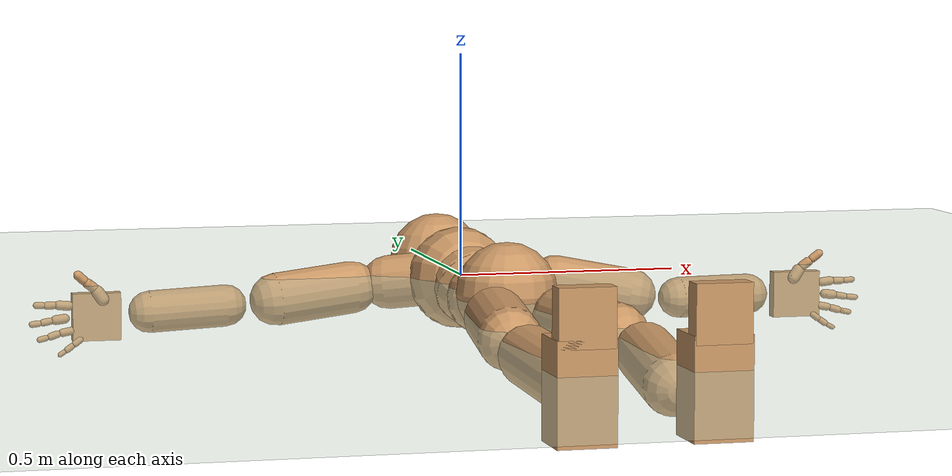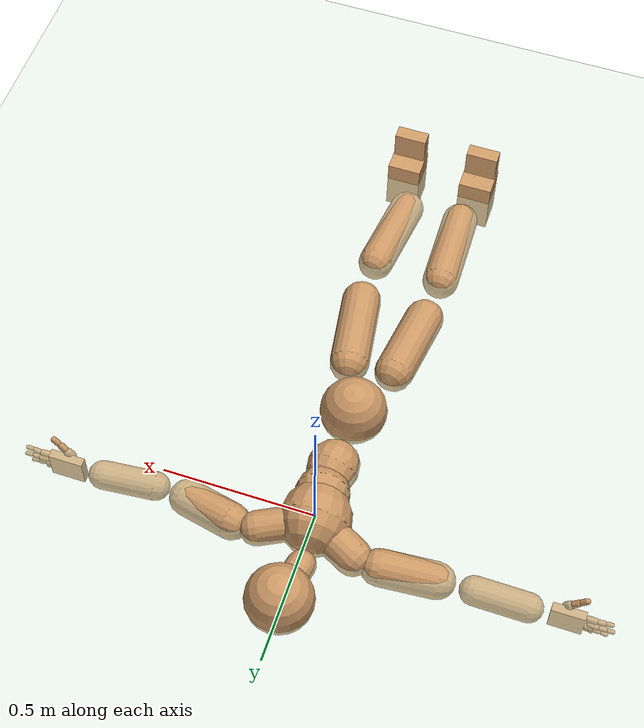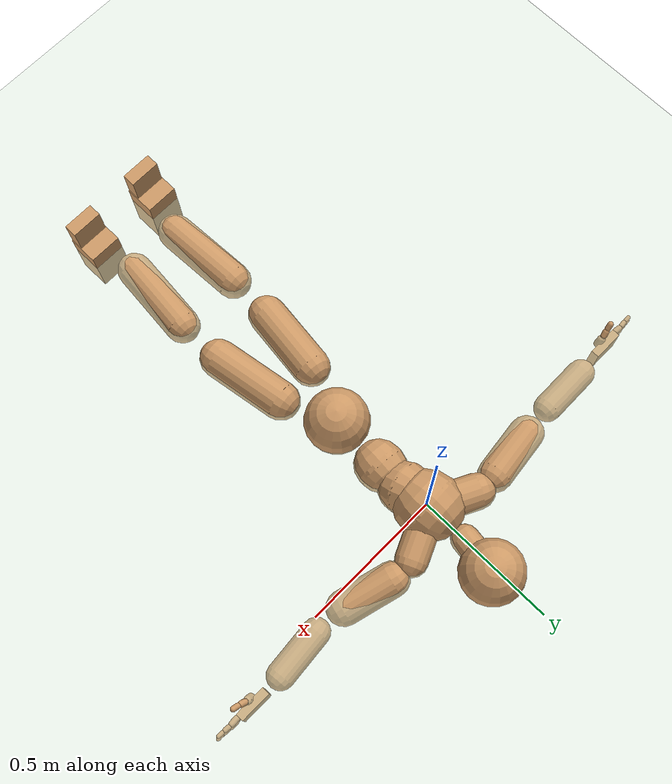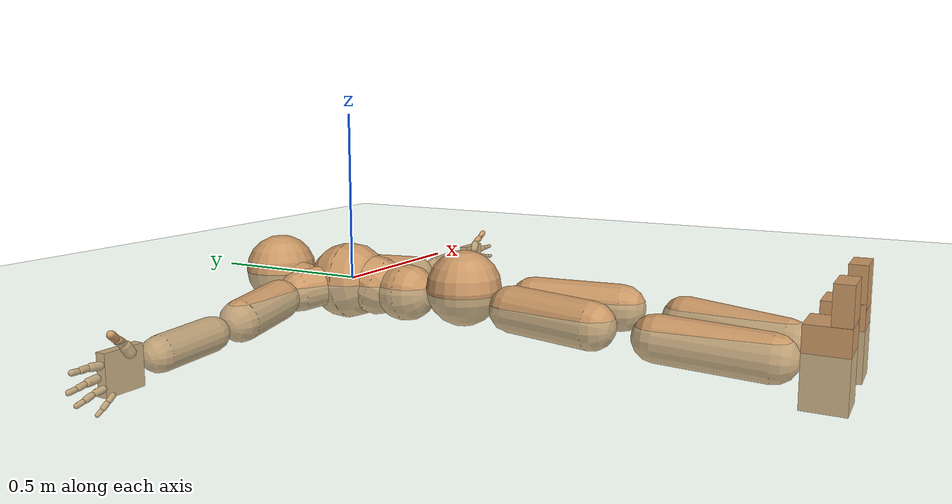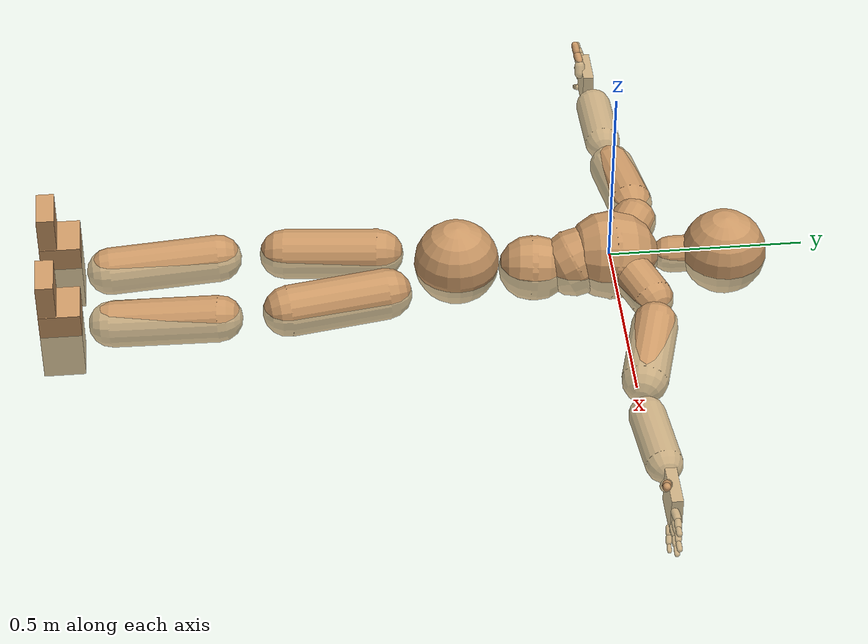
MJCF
<mujoco model="humanoid">
  <compiler coordinate="local"/>
  <default>
    <joint damping="0.0" armature="0.01" stiffness="0.0" limited="true"/>
    <geom conaffinity="1" condim="3" contype="7" margin="0.001" rgba="0.8 0.6 .4 1"/>
  </default>
  <asset>
    <texture type="skybox" builtin="gradient" rgb1=".4 .5 .6" rgb2="0 0 0" width="100" height="100"/>
    <texture builtin="flat" height="1278" mark="cross" markrgb="1 1 1" name="texgeom" random="0.01" rgb1="0.8 0.6 0.4" rgb2="0.8 0.6 0.4" type="cube" width="127"/>
    <texture builtin="checker" height="100" name="texplane" rgb1="0 0 0" rgb2="0.8 0.8 0.8" type="2d" width="100"/>
    <material name="MatPlane" reflectance="0.5" shininess="1" specular="1" texrepeat="60 60" texture="texplane"/>
    <material name="geom" texture="texgeom" texuniform="true"/>
  </asset>
  <worldbody>
    <light cutoff="100" diffuse="1 1 1" dir="-0 0 -1.3" directional="true" exponent="1" pos="0 0 1.3" specular=".1 .1 .1"/>
    <geom conaffinity="1" condim="3" name="floor" pos="0 0 0" rgba="0.8 0.9 0.8 1" size="100 100 .2" type="plane" material="MatPlane"/>
    <body name="Pelvis" pos="0.0029 -0.3959 0.0083">
      <freejoint name="Pelvis"/>
      <geom type="sphere" contype="1" conaffinity="1" density="4629.6296296296305" size="0.1095" pos="0.0000 0.0000 0.0000" name="Pelvis"/>
      <body name="L_Hip" pos="0.061 -0.1022 -0.0283">
        <joint name="L_Hip_x" type="hinge" pos="0 0 0" axis="1 0 0" user="250 2.5 1 500 10 2" armature="0.01" range="-90.0000 90.0000" damping="0" stiffness="0"/>
        <joint name="L_Hip_y" type="hinge" pos="0 0 0" axis="0 1 0" user="250 2.5 1 500 10 2" armature="0.01" range="-90.0000 90.0000" damping="0" stiffness="0"/>
        <joint name="L_Hip_z" type="hinge" pos="0 0 0" axis="0 0 1" user="250 2.5 1 500 10 2" armature="0.01" range="-90.0000 90.0000" damping="0" stiffness="0"/>
        <geom type="capsule" contype="1" conaffinity="1" density="2040.816327" fromto="0.0130 -0.0841 -0.0011 0.0519 -0.3363 -0.0045" size="0.0658" name="L_Hip"/>
        <body name="L_Knee" pos="0.0649 -0.4204 -0.0056">
          <joint name="L_Knee_x" type="hinge" pos="0 0 0" axis="1 0 0" user="250 2.5 1 500 10 2" armature="0.01" range="-180.0000 180.0000" damping="0" stiffness="0"/>
          <joint name="L_Knee_y" type="hinge" pos="0 0 0" axis="0 1 0" user="250 2.5 1 500 10 2" armature="0.01" range="-5.6250 5.6250" damping="0" stiffness="0"/>
          <joint name="L_Knee_z" type="hinge" pos="0 0 0" axis="0 0 1" user="250 2.5 1 500 10 2" armature="0.01" range="-5.6250 5.6250" damping="0" stiffness="0"/>
          <geom type="capsule" contype="1" conaffinity="1" density="1234.567901" fromto="-0.0096 -0.0908 -0.0072 -0.0382 -0.3632 -0.0290" size="0.0597" name="L_Knee"/>
          <body name="L_Ankle" pos="-0.0478 -0.4541 -0.0362">
            <joint name="L_Ankle_x" type="hinge" pos="0 0 0" axis="1 0 0" user="150 2.5 1 500 10 2" armature="0.01" range="-90.0000 90.0000" damping="0" stiffness="0"/>
            <joint name="L_Ankle_y" type="hinge" pos="0 0 0" axis="0 1 0" user="150 2.5 1 500 10 2" armature="0.01" range="-90.0000 90.0000" damping="0" stiffness="0"/>
            <joint name="L_Ankle_z" type="hinge" pos="0 0 0" axis="0 0 1" user="150 2.5 1 500 10 2" armature="0.01" range="-90.0000 90.0000" damping="0" stiffness="0"/>
            <geom type="box" density="462.006215" pos="0.0472 -0.0339 0.0262" size="0.0566 0.0524 0.0981" quat="1.0000 0.0000 0.0000 0.0000" name="L_Ankle"/>
            <body name="L_Toe" pos="0.0545 -0.067 0.1344">
              <joint name="L_Toe_x" type="hinge" pos="0 0 0" axis="1 0 0" user="150 1 1 500 1 1" armature="0.01" range="-90.0000 90.0000" damping="0" stiffness="0"/>
              <joint name="L_Toe_y" type="hinge" pos="0 0 0" axis="0 1 0" user="150 1 1 500 1 1" armature="0.01" range="-45.0000 45.0000" damping="0" stiffness="0"/>
              <joint name="L_Toe_z" type="hinge" pos="0 0 0" axis="0 0 1" user="150 1 1 500 1 1" armature="0.01" range="-45.0000 45.0000" damping="0" stiffness="0"/>
              <geom type="box" density="424.284098" pos="-0.0073 0.0034 0.0290" size="0.054 0.0228 0.056" quat="1.0000 0.0000 0.0000 0.0000" name="L_Toe"/>
            </body>
          </body>
        </body>
      </body>
      <body name="R_Hip" pos="-0.0661 -0.1157 -0.0212">
        <joint name="R_Hip_x" type="hinge" pos="0 0 0" axis="1 0 0" user="250 2.5 1 500 10 2" armature="0.01" range="-90.0000 90.0000" damping="0" stiffness="0"/>
        <joint name="R_Hip_y" type="hinge" pos="0 0 0" axis="0 1 0" user="250 2.5 1 500 10 2" armature="0.01" range="-90.0000 90.0000" damping="0" stiffness="0"/>
        <joint name="R_Hip_z" type="hinge" pos="0 0 0" axis="0 0 1" user="250 2.5 1 500 10 2" armature="0.01" range="-90.0000 90.0000" damping="0" stiffness="0"/>
        <geom type="capsule" contype="1" conaffinity="1" density="2040.816327" fromto="-0.0106 -0.0802 -0.0031 -0.0424 -0.3207 -0.0123" size="0.0651" name="R_Hip"/>
        <body name="R_Knee" pos="-0.0531 -0.4008 -0.0153">
          <joint name="R_Knee_x" type="hinge" pos="0 0 0" axis="1 0 0" user="250 2.5 1 500 10 2" armature="0.01" range="-180.0000 180.0000" damping="0" stiffness="0"/>
          <joint name="R_Knee_y" type="hinge" pos="0 0 0" axis="0 1 0" user="250 2.5 1 500 10 2" armature="0.01" range="-5.6250 5.6250" damping="0" stiffness="0"/>
          <joint name="R_Knee_z" type="hinge" pos="0 0 0" axis="0 0 1" user="250 2.5 1 500 10 2" armature="0.01" range="-5.6250 5.6250" damping="0" stiffness="0"/>
          <geom type="capsule" contype="1" conaffinity="1" density="1234.567901" fromto="0.0031 -0.0927 -0.0046 0.0125 -0.3707 -0.0184" size="0.0614" name="R_Knee"/>
          <body name="R_Ankle" pos="0.0157 -0.4633 -0.023">
            <joint name="R_Ankle_x" type="hinge" pos="0 0 0" axis="1 0 0" user="150 1 1 500 10 2" armature="0.01" range="-90.0000 90.0000" damping="0" stiffness="0"/>
            <joint name="R_Ankle_y" type="hinge" pos="0 0 0" axis="0 1 0" user="150 1 1 500 10 2" armature="0.01" range="-90.0000 90.0000" damping="0" stiffness="0"/>
            <joint name="R_Ankle_z" type="hinge" pos="0 0 0" axis="0 0 1" user="150 1 1 500 10 2" armature="0.01" range="-90.0000 90.0000" damping="0" stiffness="0"/>
            <geom type="box" density="461.990432" pos="-0.0277 -0.0308 0.0156" size="0.0566 0.0524 0.0981" quat="1.0000 0.0000 0.0000 0.0000" name="R_Ankle"/>
            <body name="R_Toe" pos="-0.0438 -0.0665 0.135">
              <joint name="R_Toe_x" type="hinge" pos="0 0 0" axis="1 0 0" user="150 1 1 500 1 1" armature="0.01" range="-90.0000 90.0000" damping="0" stiffness="0"/>
              <joint name="R_Toe_y" type="hinge" pos="0 0 0" axis="0 1 0" user="150 1 1 500 1 1" armature="0.01" range="-45.0000 45.0000" damping="0" stiffness="0"/>
              <joint name="R_Toe_z" type="hinge" pos="0 0 0" axis="0 0 1" user="150 1 1 500 1 1" armature="0.01" range="-45.0000 45.0000" damping="0" stiffness="0"/>
              <geom type="box" density="424.29831" pos="0.0161 0.0061 0.0178" size="0.054 0.0228 0.0559" quat="1.0000 0.0000 0.0000 0.0000" name="R_Toe"/>
            </body>
          </body>
        </body>
      </body>
      <body name="Torso" pos="-0.0033 0.1226 -0.031">
        <joint name="Torso_x" type="hinge" pos="0 0 0" axis="1 0 0" user="500 5 1 500 10 2" armature="0.01" range="-60.0000 60.0000" damping="0" stiffness="0"/>
        <joint name="Torso_y" type="hinge" pos="0 0 0" axis="0 1 0" user="500 5 1 500 10 2" armature="0.01" range="-60.0000 60.0000" damping="0" stiffness="0"/>
        <joint name="Torso_z" type="hinge" pos="0 0 0" axis="0 0 1" user="500 5 1 500 10 2" armature="0.01" range="-60.0000 60.0000" damping="0" stiffness="0"/>
        <geom type="capsule" contype="1" conaffinity="1" density="2040.816327" fromto="0.0055 0.0695 -0.0030 0.0067 0.0850 -0.0037" size="0.0837" name="Torso"/>
        <body name="Spine" pos="0.0121 0.1545 -0.0067">
          <joint name="Spine_x" type="hinge" pos="0 0 0" axis="1 0 0" user="500 5 1 500 10 2" armature="0.01" range="-60.0000 60.0000" damping="0" stiffness="0"/>
          <joint name="Spine_y" type="hinge" pos="0 0 0" axis="0 1 0" user="500 5 1 500 10 2" armature="0.01" range="-60.0000 60.0000" damping="0" stiffness="0"/>
          <joint name="Spine_z" type="hinge" pos="0 0 0" axis="0 0 1" user="500 5 1 500 10 2" armature="0.01" range="-60.0000 60.0000" damping="0" stiffness="0"/>
          <geom type="capsule" contype="1" conaffinity="1" density="2040.816327" fromto="-0.0057 0.0285 0.0133 -0.0069 0.0349 0.0162" size="0.088" name="Spine"/>
          <body name="Chest" pos="-0.0126 0.0634 0.0295">
            <joint name="Chest_x" type="hinge" pos="0 0 0" axis="1 0 0" user="500 5 1 500 10 2" armature="0.01" range="-60.0000 60.0000" damping="0" stiffness="0"/>
            <joint name="Chest_y" type="hinge" pos="0 0 0" axis="0 1 0" user="500 5 1 500 10 2" armature="0.01" range="-60.0000 60.0000" damping="0" stiffness="0"/>
            <joint name="Chest_z" type="hinge" pos="0 0 0" axis="0 0 1" user="500 5 1 500 10 2" armature="0.01" range="-60.0000 60.0000" damping="0" stiffness="0"/>
            <geom type="capsule" contype="1" conaffinity="1" density="2040.816327" fromto="-0.0026 0.0554 -0.0058 -0.0031 0.0677 -0.0071" size="0.1144" name="Chest"/>
            <body name="Neck" pos="-0.0142 0.182 -0.0259">
              <joint name="Neck_x" type="hinge" pos="0 0 0" axis="1 0 0" user="150 1 1 250 50 4" armature="0.01" range="-180.0000 180.0000" damping="0" stiffness="0"/>
              <joint name="Neck_y" type="hinge" pos="0 0 0" axis="0 1 0" user="150 1 1 250 50 4" armature="0.01" range="-180.0000 180.0000" damping="0" stiffness="0"/>
              <joint name="Neck_z" type="hinge" pos="0 0 0" axis="0 0 1" user="150 1 1 250 50 4" armature="0.01" range="-180.0000 180.0000" damping="0" stiffness="0"/>
              <geom type="capsule" contype="1" conaffinity="1" density="1000" fromto="0.0057 0.0338 0.0051 0.0228 0.1351 0.0203" size="0.0475" name="Neck"/>
              <body name="Head" pos="0.0286 0.1689 0.0254">
                <joint name="Head_x" type="hinge" pos="0 0 0" axis="1 0 0" user="150 1 1 250 50 4" armature="0.01" range="-90.0000 90.0000" damping="0" stiffness="0"/>
                <joint name="Head_y" type="hinge" pos="0 0 0" axis="0 1 0" user="150 1 1 250 50 4" armature="0.01" range="-90.0000 90.0000" damping="0" stiffness="0"/>
                <joint name="Head_z" type="hinge" pos="0 0 0" axis="0 0 1" user="150 1 1 250 50 4" armature="0.01" range="-90.0000 90.0000" damping="0" stiffness="0"/>
                <geom type="sphere" contype="1" conaffinity="1" density="1000" size="0.1096" pos="0.0000 0.0000 0.0000" name="Head"/>
              </body>
            </body>
            <body name="L_Thorax" pos="0.0505 0.094 -0.0029">
              <joint name="L_Thorax_x" type="hinge" pos="0 0 0" axis="1 0 0" user="200 2 1 500 50 4" armature="0.01" range="-180.0000 180.0000" damping="0" stiffness="0"/>
              <joint name="L_Thorax_y" type="hinge" pos="0 0 0" axis="0 1 0" user="200 2 1 500 50 4" armature="0.01" range="-180.0000 180.0000" damping="0" stiffness="0"/>
              <joint name="L_Thorax_z" type="hinge" pos="0 0 0" axis="0 0 1" user="200 2 1 500 50 4" armature="0.01" range="-180.0000 180.0000" damping="0" stiffness="0"/>
              <geom type="capsule" contype="1" conaffinity="1" density="1000" fromto="0.0277 0.0124 -0.0038 0.1107 0.0497 -0.0151" size="0.0556" name="L_Thorax"/>
              <body name="L_Shoulder" pos="0.1384 0.0621 -0.0189">
                <joint name="L_Shoulder_x" type="hinge" pos="0 0 0" axis="1 0 0" user="200 2 1 500 50 4" armature="0.01" range="-180.0000 180.0000" damping="0" stiffness="0"/>
                <joint name="L_Shoulder_y" type="hinge" pos="0 0 0" axis="0 1 0" user="200 2 1 500 50 4" armature="0.01" range="-180.0000 180.0000" damping="0" stiffness="0"/>
                <joint name="L_Shoulder_z" type="hinge" pos="0 0 0" axis="0 0 1" user="200 2 1 500 50 4" armature="0.01" range="-180.0000 180.0000" damping="0" stiffness="0"/>
                <geom type="capsule" contype="1" conaffinity="1" density="1000" fromto="0.0559 -0.0160 -0.0100 0.2235 -0.0638 -0.0400" size="0.0592" name="L_Shoulder"/>
                <body name="L_Elbow" pos="0.2794 -0.0798 -0.05">
                  <joint name="L_Elbow_x" type="hinge" pos="0 0 0" axis="1 0 0" user="150 1 1 150 10 2" armature="0.01" range="-720.0000 720.0000" damping="0" stiffness="0"/>
                  <joint name="L_Elbow_y" type="hinge" pos="0 0 0" axis="0 1 0" user="150 1 1 150 10 2" armature="0.01" range="-720.0000 720.0000" damping="0" stiffness="0"/>
                  <joint name="L_Elbow_z" type="hinge" pos="0 0 0" axis="0 0 1" user="150 1 1 150 10 2" armature="0.01" range="-720.0000 720.0000" damping="0" stiffness="0"/>
                  <geom type="capsule" contype="1" conaffinity="1" density="1000" fromto="0.0577 0.0055 0.0002 0.2308 0.0219 0.0009" size="0.0469" name="L_Elbow"/>
                  <body name="L_Wrist" pos="0.2885 0.0274 0.0011">
                    <joint name="L_Wrist_x" type="hinge" pos="0 0 0" axis="1 0 0" user="100 1 1 150 1 1" armature="0.01" range="-180.0000 180.0000" damping="0" stiffness="0"/>
                    <joint name="L_Wrist_y" type="hinge" pos="0 0 0" axis="0 1 0" user="100 1 1 150 1 1" armature="0.01" range="-180.0000 180.0000" damping="0" stiffness="0"/>
                    <joint name="L_Wrist_z" type="hinge" pos="0 0 0" axis="0 0 1" user="100 1 1 150 1 1" armature="0.01" range="-180.0000 180.0000" damping="0" stiffness="0"/>
                    <geom type="box" density="1215.808982" pos="0.0615 -0.0019 -0.0034" size="0.0566 0.0143 0.0529" quat="1.0000 0.0000 0.0000 0.0000" name="L_Wrist"/>
                    <body name="L_Index1" pos="0.1193 -0.0091 0.022">
                      <joint name="L_Index1_x" type="hinge" pos="0 0 0" axis="1 0 0" user="100 10 1 150" armature="0.01" range="-180.0000 180.0000" damping="0" stiffness="0"/>
                      <joint name="L_Index1_y" type="hinge" pos="0 0 0" axis="0 1 0" user="100 10 1 150" armature="0.01" range="-180.0000 180.0000" damping="0" stiffness="0"/>
                      <joint name="L_Index1_z" type="hinge" pos="0 0 0" axis="0 0 1" user="100 10 1 150" armature="0.01" range="-180.0000 180.0000" damping="0" stiffness="0"/>
                      <geom type="capsule" contype="1" conaffinity="1" density="1000" fromto="0.0071 0.0006 0.0006 0.0282 0.0023 0.0024" size="0.0104" name="L_Index1"/>
                      <body name="L_Index2" pos="0.0353 0.0029 0.003">
                        <joint name="L_Index2_x" type="hinge" pos="0 0 0" axis="1 0 0" user="100 10 1 150" armature="0.01" range="-180.0000 180.0000" damping="0" stiffness="0"/>
                        <joint name="L_Index2_y" type="hinge" pos="0 0 0" axis="0 1 0" user="100 10 1 150" armature="0.01" range="-180.0000 180.0000" damping="0" stiffness="0"/>
                        <joint name="L_Index2_z" type="hinge" pos="0 0 0" axis="0 0 1" user="100 10 1 150" armature="0.01" range="-180.0000 180.0000" damping="0" stiffness="0"/>
                        <geom type="capsule" contype="1" conaffinity="1" density="1000" fromto="0.0050 -0.0005 -0.0001 0.0198 -0.0021 -0.0003" size="0.0086" name="L_Index2"/>
                        <body name="L_Index3" pos="0.0248 -0.0026 -0.0003">
                          <joint name="L_Index3_x" type="hinge" pos="0 0 0" axis="1 0 0" user="100 10 1 150" armature="0.01" range="-180.0000 180.0000" damping="0" stiffness="0"/>
                          <joint name="L_Index3_y" type="hinge" pos="0 0 0" axis="0 1 0" user="100 10 1 150" armature="0.01" range="-180.0000 180.0000" damping="0" stiffness="0"/>
                          <joint name="L_Index3_z" type="hinge" pos="0 0 0" axis="0 0 1" user="100 10 1 150" armature="0.01" range="-180.0000 180.0000" damping="0" stiffness="0"/>
                          <geom type="capsule" contype="1" conaffinity="1" density="1000" fromto="0.0054 -0.0001 0.0003 0.0214 -0.0005 0.0013" size="0.0072" name="L_Index3"/>
                        </body>
                      </body>
                    </body>
                    <body name="L_Middle1" pos="0.1283 -0.0064 -0.005">
                      <joint name="L_Middle1_x" type="hinge" pos="0 0 0" axis="1 0 0" user="100 10 1 150" armature="0.01" range="-180.0000 180.0000" damping="0" stiffness="0"/>
                      <joint name="L_Middle1_y" type="hinge" pos="0 0 0" axis="0 1 0" user="100 10 1 150" armature="0.01" range="-180.0000 180.0000" damping="0" stiffness="0"/>
                      <joint name="L_Middle1_z" type="hinge" pos="0 0 0" axis="0 0 1" user="100 10 1 150" armature="0.01" range="-180.0000 180.0000" damping="0" stiffness="0"/>
                      <geom type="capsule" contype="1" conaffinity="1" density="1000" fromto="0.0068 0.0002 -0.0009 0.0271 0.0008 -0.0035" size="0.0107" name="L_Middle1"/>
                      <body name="L_Middle2" pos="0.0339 0.001 -0.0044">
                        <joint name="L_Middle2_x" type="hinge" pos="0 0 0" axis="1 0 0" user="100 10 1 150" armature="0.01" range="-180.0000 180.0000" damping="0" stiffness="0"/>
                        <joint name="L_Middle2_y" type="hinge" pos="0 0 0" axis="0 1 0" user="100 10 1 150" armature="0.01" range="-180.0000 180.0000" damping="0" stiffness="0"/>
                        <joint name="L_Middle2_z" type="hinge" pos="0 0 0" axis="0 0 1" user="100 10 1 150" armature="0.01" range="-180.0000 180.0000" damping="0" stiffness="0"/>
                        <geom type="capsule" contype="1" conaffinity="1" density="1000" fromto="0.0052 -0.0005 -0.0009 0.0207 -0.0019 -0.0037" size="0.008" name="L_Middle2"/>
                        <body name="L_Middle3" pos="0.0259 -0.0024 -0.0047">
                          <joint name="L_Middle3_x" type="hinge" pos="0 0 0" axis="1 0 0" user="100 10 1 150" armature="0.01" range="-180.0000 180.0000" damping="0" stiffness="0"/>
                          <joint name="L_Middle3_y" type="hinge" pos="0 0 0" axis="0 1 0" user="100 10 1 150" armature="0.01" range="-180.0000 180.0000" damping="0" stiffness="0"/>
                          <joint name="L_Middle3_z" type="hinge" pos="0 0 0" axis="0 0 1" user="100 10 1 150" armature="0.01" range="-180.0000 180.0000" damping="0" stiffness="0"/>
                          <geom type="capsule" contype="1" conaffinity="1" density="1000" fromto="0.0056 -0.0001 -0.0005 0.0223 -0.0003 -0.0021" size="0.0069" name="L_Middle3"/>
                        </body>
                      </body>
                    </body>
                    <body name="L_Pinky1" pos="0.0997 -0.016 -0.0506">
                      <joint name="L_Pinky1_x" type="hinge" pos="0 0 0" axis="1 0 0" user="100 10 1 150" armature="0.01" range="-180.0000 180.0000" damping="0" stiffness="0"/>
                      <joint name="L_Pinky1_y" type="hinge" pos="0 0 0" axis="0 1 0" user="100 10 1 150" armature="0.01" range="-180.0000 180.0000" damping="0" stiffness="0"/>
                      <joint name="L_Pinky1_z" type="hinge" pos="0 0 0" axis="0 0 1" user="100 10 1 150" armature="0.01" range="-180.0000 180.0000" damping="0" stiffness="0"/>
                      <geom type="capsule" contype="1" conaffinity="1" density="1000" fromto="0.0036 -0.0003 -0.0026 0.0144 -0.0012 -0.0106" size="0.0075" name="L_Pinky1"/>
                      <body name="L_Pinky2" pos="0.018 -0.0015 -0.0132">
                        <joint name="L_Pinky2_x" type="hinge" pos="0 0 0" axis="1 0 0" user="100 10 1 150" armature="0.01" range="-180.0000 180.0000" damping="0" stiffness="0"/>
                        <joint name="L_Pinky2_y" type="hinge" pos="0 0 0" axis="0 1 0" user="100 10 1 150" armature="0.01" range="-180.0000 180.0000" damping="0" stiffness="0"/>
                        <joint name="L_Pinky2_z" type="hinge" pos="0 0 0" axis="0 0 1" user="100 10 1 150" armature="0.01" range="-180.0000 180.0000" damping="0" stiffness="0"/>
                        <geom type="capsule" contype="1" conaffinity="1" density="1000" fromto="0.0035 -0.0004 -0.0024 0.0140 -0.0017 -0.0097" size="0.0072" name="L_Pinky2"/>
                        <body name="L_Pinky3" pos="0.0175 -0.0021 -0.0121">
                          <joint name="L_Pinky3_x" type="hinge" pos="0 0 0" axis="1 0 0" user="100 10 1 150" armature="0.01" range="-180.0000 180.0000" damping="0" stiffness="0"/>
                          <joint name="L_Pinky3_y" type="hinge" pos="0 0 0" axis="0 1 0" user="100 10 1 150" armature="0.01" range="-180.0000 180.0000" damping="0" stiffness="0"/>
                          <joint name="L_Pinky3_z" type="hinge" pos="0 0 0" axis="0 0 1" user="100 10 1 150" armature="0.01" range="-180.0000 180.0000" damping="0" stiffness="0"/>
                          <geom type="capsule" contype="1" conaffinity="1" density="1000" fromto="0.0039 -0.0000 -0.0020 0.0156 -0.0001 -0.0081" size="0.0055" name="L_Pinky3"/>
                        </body>
                      </body>
                    </body>
                    <body name="L_Ring1" pos="0.1151 -0.0099 -0.0319">
                      <joint name="L_Ring1_x" type="hinge" pos="0 0 0" axis="1 0 0" user="100 10 1 150" armature="0.01" range="-180.0000 180.0000" damping="0" stiffness="0"/>
                      <joint name="L_Ring1_y" type="hinge" pos="0 0 0" axis="0 1 0" user="100 10 1 150" armature="0.01" range="-180.0000 180.0000" damping="0" stiffness="0"/>
                      <joint name="L_Ring1_z" type="hinge" pos="0 0 0" axis="0 0 1" user="100 10 1 150" armature="0.01" range="-180.0000 180.0000" damping="0" stiffness="0"/>
                      <geom type="capsule" contype="1" conaffinity="1" density="1000" fromto="0.0063 0.0004 -0.0012 0.0254 0.0014 -0.0047" size="0.009" name="L_Ring1"/>
                      <body name="L_Ring2" pos="0.0317 0.0018 -0.0059">
                        <joint name="L_Ring2_x" type="hinge" pos="0 0 0" axis="1 0 0" user="100 10 1 150" armature="0.01" range="-180.0000 180.0000" damping="0" stiffness="0"/>
                        <joint name="L_Ring2_y" type="hinge" pos="0 0 0" axis="0 1 0" user="100 10 1 150" armature="0.01" range="-180.0000 180.0000" damping="0" stiffness="0"/>
                        <joint name="L_Ring2_z" type="hinge" pos="0 0 0" axis="0 0 1" user="100 10 1 150" armature="0.01" range="-180.0000 180.0000" damping="0" stiffness="0"/>
                        <geom type="capsule" contype="1" conaffinity="1" density="1000" fromto="0.0051 -0.0004 -0.0016 0.0203 -0.0014 -0.0063" size="0.0083" name="L_Ring2"/>
                        <body name="L_Ring3" pos="0.0254 -0.0018 -0.0079">
                          <joint name="L_Ring3_x" type="hinge" pos="0 0 0" axis="1 0 0" user="100 10 1 150" armature="0.01" range="-180.0000 180.0000" damping="0" stiffness="0"/>
                          <joint name="L_Ring3_y" type="hinge" pos="0 0 0" axis="0 1 0" user="100 10 1 150" armature="0.01" range="-180.0000 180.0000" damping="0" stiffness="0"/>
                          <joint name="L_Ring3_z" type="hinge" pos="0 0 0" axis="0 0 1" user="100 10 1 150" armature="0.01" range="-180.0000 180.0000" damping="0" stiffness="0"/>
                          <geom type="capsule" contype="1" conaffinity="1" density="1000" fromto="0.0055 0.0000 -0.0012 0.0219 0.0002 -0.0047" size="0.0065" name="L_Ring3"/>
                        </body>
                      </body>
                    </body>
                    <body name="L_Thumb1" pos="0.0484 -0.0213 0.0305">
                      <joint name="L_Thumb1_x" type="hinge" pos="0 0 0" axis="1 0 0" user="100 10 1 150" armature="0.01" range="-180.0000 180.0000" damping="0" stiffness="0"/>
                      <joint name="L_Thumb1_y" type="hinge" pos="0 0 0" axis="0 1 0" user="100 10 1 150" armature="0.01" range="-180.0000 180.0000" damping="0" stiffness="0"/>
                      <joint name="L_Thumb1_z" type="hinge" pos="0 0 0" axis="0 0 1" user="100 10 1 150" armature="0.01" range="-180.0000 180.0000" damping="0" stiffness="0"/>
                      <geom type="capsule" contype="1" conaffinity="1" density="1000" fromto="0.0038 0.0003 0.0058 0.0154 0.0011 0.0230" size="0.0141" name="L_Thumb1"/>
                      <body name="L_Thumb2" pos="0.0192 0.0013 0.0288">
                        <joint name="L_Thumb2_x" type="hinge" pos="0 0 0" axis="1 0 0" user="100 10 1 150" armature="0.01" range="-180.0000 180.0000" damping="0" stiffness="0"/>
                        <joint name="L_Thumb2_y" type="hinge" pos="0 0 0" axis="0 1 0" user="100 10 1 150" armature="0.01" range="-180.0000 180.0000" damping="0" stiffness="0"/>
                        <joint name="L_Thumb2_z" type="hinge" pos="0 0 0" axis="0 0 1" user="100 10 1 150" armature="0.01" range="-180.0000 180.0000" damping="0" stiffness="0"/>
                        <geom type="capsule" contype="1" conaffinity="1" density="1000" fromto="0.0046 -0.0012 0.0035 0.0184 -0.0047 0.0140" size="0.0111" name="L_Thumb2"/>
                        <body name="L_Thumb3" pos="0.023 -0.0059 0.0175">
                          <joint name="L_Thumb3_x" type="hinge" pos="0 0 0" axis="1 0 0" user="100 10 1 150" armature="0.01" range="-180.0000 180.0000" damping="0" stiffness="0"/>
                          <joint name="L_Thumb3_y" type="hinge" pos="0 0 0" axis="0 1 0" user="100 10 1 150" armature="0.01" range="-180.0000 180.0000" damping="0" stiffness="0"/>
                          <joint name="L_Thumb3_z" type="hinge" pos="0 0 0" axis="0 0 1" user="100 10 1 150" armature="0.01" range="-180.0000 180.0000" damping="0" stiffness="0"/>
                          <geom type="capsule" contype="1" conaffinity="1" density="1000" fromto="0.0050 -0.0008 0.0039 0.0200 -0.0031 0.0156" size="0.0099" name="L_Thumb3"/>
                        </body>
                      </body>
                    </body>
                  </body>
                </body>
              </body>
            </body>
            <body name="R_Thorax" pos="-0.0533 0.093 -0.0099">
              <joint name="R_Thorax_x" type="hinge" pos="0 0 0" axis="1 0 0" user="200 2 1 150 10 2" armature="0.01" range="-180.0000 180.0000" damping="0" stiffness="0"/>
              <joint name="R_Thorax_y" type="hinge" pos="0 0 0" axis="0 1 0" user="200 2 1 150 10 2" armature="0.01" range="-180.0000 180.0000" damping="0" stiffness="0"/>
              <joint name="R_Thorax_z" type="hinge" pos="0 0 0" axis="0 0 1" user="200 2 1 150 10 2" armature="0.01" range="-180.0000 180.0000" damping="0" stiffness="0"/>
              <geom type="capsule" contype="1" conaffinity="1" density="1000" fromto="-0.0240 0.0115 -0.0032 -0.0961 0.0461 -0.0127" size="0.0609" name="R_Thorax"/>
              <body name="R_Shoulder" pos="-0.1201 0.0577 -0.0158">
                <joint name="R_Shoulder_x" type="hinge" pos="0 0 0" axis="1 0 0" user="200 2 1 250 10 2" armature="0.01" range="-180.0000 180.0000" damping="0" stiffness="0"/>
                <joint name="R_Shoulder_y" type="hinge" pos="0 0 0" axis="0 1 0" user="200 2 1 250 10 2" armature="0.01" range="-180.0000 180.0000" damping="0" stiffness="0"/>
                <joint name="R_Shoulder_z" type="hinge" pos="0 0 0" axis="0 0 1" user="200 2 1 250 10 2" armature="0.01" range="-180.0000 180.0000" damping="0" stiffness="0"/>
                <geom type="capsule" contype="1" conaffinity="1" density="1000" fromto="-0.0599 -0.0077 -0.0064 -0.2395 -0.0309 -0.0256" size="0.0591" name="R_Shoulder"/>
                <body name="R_Elbow" pos="-0.2993 -0.0387 -0.032">
                  <joint name="R_Elbow_x" type="hinge" pos="0 0 0" axis="1 0 0" user="150 1 1 150 10 2" armature="0.01" range="-720.0000 720.0000" damping="0" stiffness="0"/>
                  <joint name="R_Elbow_y" type="hinge" pos="0 0 0" axis="0 1 0" user="150 1 1 150 10 2" armature="0.01" range="-720.0000 720.0000" damping="0" stiffness="0"/>
                  <joint name="R_Elbow_z" type="hinge" pos="0 0 0" axis="0 0 1" user="150 1 1 150 10 2" armature="0.01" range="-720.0000 720.0000" damping="0" stiffness="0"/>
                  <geom type="capsule" contype="1" conaffinity="1" density="1000" fromto="-0.0569 -0.0010 -0.0027 -0.2275 -0.0038 -0.0107" size="0.0473" name="R_Elbow"/>
                  <body name="R_Wrist" pos="-0.2844 -0.0048 -0.0133">
                    <joint name="R_Wrist_x" type="hinge" pos="0 0 0" axis="1 0 0" user="100 1 1 150 1 1" armature="0.01" range="-180.0000 180.0000" damping="0" stiffness="0"/>
                    <joint name="R_Wrist_y" type="hinge" pos="0 0 0" axis="0 1 0" user="100 1 1 150 1 1" armature="0.01" range="-180.0000 180.0000" damping="0" stiffness="0"/>
                    <joint name="R_Wrist_z" type="hinge" pos="0 0 0" axis="0 0 1" user="100 1 1 150 1 1" armature="0.01" range="-180.0000 180.0000" damping="0" stiffness="0"/>
                    <geom type="box" density="1238.293613" pos="-0.0629 -0.0053 -0.0031" size="0.0536 0.0143 0.0529" quat="1.0000 0.0000 0.0000 0.0000" name="R_Wrist"/>
                    <body name="R_Index1" pos="-0.1172 -0.0125 0.0223">
                      <joint name="R_Index1_x" type="hinge" pos="0 0 0" axis="1 0 0" user="100 10 1 150" armature="0.01" range="-180.0000 180.0000" damping="0" stiffness="0"/>
                      <joint name="R_Index1_y" type="hinge" pos="0 0 0" axis="0 1 0" user="100 10 1 150" armature="0.01" range="-180.0000 180.0000" damping="0" stiffness="0"/>
                      <joint name="R_Index1_z" type="hinge" pos="0 0 0" axis="0 0 1" user="100 10 1 150" armature="0.01" range="-180.0000 180.0000" damping="0" stiffness="0"/>
                      <geom type="capsule" contype="1" conaffinity="1" density="1000" fromto="-0.0071 0.0006 0.0006 -0.0282 0.0023 0.0024" size="0.0104" name="R_Index1"/>
                      <body name="R_Index2" pos="-0.0353 0.0029 0.003">
                        <joint name="R_Index2_x" type="hinge" pos="0 0 0" axis="1 0 0" user="100 10 1 150" armature="0.01" range="-180.0000 180.0000" damping="0" stiffness="0"/>
                        <joint name="R_Index2_y" type="hinge" pos="0 0 0" axis="0 1 0" user="100 10 1 150" armature="0.01" range="-180.0000 180.0000" damping="0" stiffness="0"/>
                        <joint name="R_Index2_z" type="hinge" pos="0 0 0" axis="0 0 1" user="100 10 1 150" armature="0.01" range="-180.0000 180.0000" damping="0" stiffness="0"/>
                        <geom type="capsule" contype="1" conaffinity="1" density="1000" fromto="-0.0050 -0.0005 -0.0001 -0.0198 -0.0021 -0.0003" size="0.0086" name="R_Index2"/>
                        <body name="R_Index3" pos="-0.0248 -0.0026 -0.0003">
                          <joint name="R_Index3_x" type="hinge" pos="0 0 0" axis="1 0 0" user="100 10 1 150" armature="0.01" range="-180.0000 180.0000" damping="0" stiffness="0"/>
                          <joint name="R_Index3_y" type="hinge" pos="0 0 0" axis="0 1 0" user="100 10 1 150" armature="0.01" range="-180.0000 180.0000" damping="0" stiffness="0"/>
                          <joint name="R_Index3_z" type="hinge" pos="0 0 0" axis="0 0 1" user="100 10 1 150" armature="0.01" range="-180.0000 180.0000" damping="0" stiffness="0"/>
                          <geom type="capsule" contype="1" conaffinity="1" density="1000" fromto="-0.0046 -0.0001 0.0003 -0.0182 -0.0005 0.0013" size="0.0075" name="R_Index3"/>
                        </body>
                      </body>
                    </body>
                    <body name="R_Middle1" pos="-0.1261 -0.0098 -0.0047">
                      <joint name="R_Middle1_x" type="hinge" pos="0 0 0" axis="1 0 0" user="100 10 1 150" armature="0.01" range="-180.0000 180.0000" damping="0" stiffness="0"/>
                      <joint name="R_Middle1_y" type="hinge" pos="0 0 0" axis="0 1 0" user="100 10 1 150" armature="0.01" range="-180.0000 180.0000" damping="0" stiffness="0"/>
                      <joint name="R_Middle1_z" type="hinge" pos="0 0 0" axis="0 0 1" user="100 10 1 150" armature="0.01" range="-180.0000 180.0000" damping="0" stiffness="0"/>
                      <geom type="capsule" contype="1" conaffinity="1" density="1000" fromto="-0.0068 0.0002 -0.0009 -0.0271 0.0008 -0.0035" size="0.0107" name="R_Middle1"/>
                      <body name="R_Middle2" pos="-0.0339 0.001 -0.0044">
                        <joint name="R_Middle2_x" type="hinge" pos="0 0 0" axis="1 0 0" user="100 10 1 150" armature="0.01" range="-180.0000 180.0000" damping="0" stiffness="0"/>
                        <joint name="R_Middle2_y" type="hinge" pos="0 0 0" axis="0 1 0" user="100 10 1 150" armature="0.01" range="-180.0000 180.0000" damping="0" stiffness="0"/>
                        <joint name="R_Middle2_z" type="hinge" pos="0 0 0" axis="0 0 1" user="100 10 1 150" armature="0.01" range="-180.0000 180.0000" damping="0" stiffness="0"/>
                        <geom type="capsule" contype="1" conaffinity="1" density="1000" fromto="-0.0052 -0.0005 -0.0009 -0.0207 -0.0019 -0.0037" size="0.008" name="R_Middle2"/>
                        <body name="R_Middle3" pos="-0.0259 -0.0024 -0.0047">
                          <joint name="R_Middle3_x" type="hinge" pos="0 0 0" axis="1 0 0" user="100 10 1 150" armature="0.01" range="-180.0000 180.0000" damping="0" stiffness="0"/>
                          <joint name="R_Middle3_y" type="hinge" pos="0 0 0" axis="0 1 0" user="100 10 1 150" armature="0.01" range="-180.0000 180.0000" damping="0" stiffness="0"/>
                          <joint name="R_Middle3_z" type="hinge" pos="0 0 0" axis="0 0 1" user="100 10 1 150" armature="0.01" range="-180.0000 180.0000" damping="0" stiffness="0"/>
                          <geom type="capsule" contype="1" conaffinity="1" density="1000" fromto="-0.0048 -0.0001 -0.0005 -0.0191 -0.0003 -0.0021" size="0.0072" name="R_Middle3"/>
                        </body>
                      </body>
                    </body>
                    <body name="R_Pinky1" pos="-0.0976 -0.0194 -0.0503">
                      <joint name="R_Pinky1_x" type="hinge" pos="0 0 0" axis="1 0 0" user="100 10 1 150" armature="0.01" range="-180.0000 180.0000" damping="0" stiffness="0"/>
                      <joint name="R_Pinky1_y" type="hinge" pos="0 0 0" axis="0 1 0" user="100 10 1 150" armature="0.01" range="-180.0000 180.0000" damping="0" stiffness="0"/>
                      <joint name="R_Pinky1_z" type="hinge" pos="0 0 0" axis="0 0 1" user="100 10 1 150" armature="0.01" range="-180.0000 180.0000" damping="0" stiffness="0"/>
                      <geom type="capsule" contype="1" conaffinity="1" density="1000" fromto="-0.0036 -0.0003 -0.0026 -0.0144 -0.0012 -0.0106" size="0.0075" name="R_Pinky1"/>
                      <body name="R_Pinky2" pos="-0.018 -0.0015 -0.0132">
                        <joint name="R_Pinky2_x" type="hinge" pos="0 0 0" axis="1 0 0" user="100 10 1 150" armature="0.01" range="-180.0000 180.0000" damping="0" stiffness="0"/>
                        <joint name="R_Pinky2_y" type="hinge" pos="0 0 0" axis="0 1 0" user="100 10 1 150" armature="0.01" range="-180.0000 180.0000" damping="0" stiffness="0"/>
                        <joint name="R_Pinky2_z" type="hinge" pos="0 0 0" axis="0 0 1" user="100 10 1 150" armature="0.01" range="-180.0000 180.0000" damping="0" stiffness="0"/>
                        <geom type="capsule" contype="1" conaffinity="1" density="1000" fromto="-0.0035 -0.0004 -0.0024 -0.0140 -0.0017 -0.0097" size="0.0072" name="R_Pinky2"/>
                        <body name="R_Pinky3" pos="-0.0175 -0.0021 -0.0121">
                          <joint name="R_Pinky3_x" type="hinge" pos="0 0 0" axis="1 0 0" user="100 10 1 150" armature="0.01" range="-180.0000 180.0000" damping="0" stiffness="0"/>
                          <joint name="R_Pinky3_y" type="hinge" pos="0 0 0" axis="0 1 0" user="100 10 1 150" armature="0.01" range="-180.0000 180.0000" damping="0" stiffness="0"/>
                          <joint name="R_Pinky3_z" type="hinge" pos="0 0 0" axis="0 0 1" user="100 10 1 150" armature="0.01" range="-180.0000 180.0000" damping="0" stiffness="0"/>
                          <geom type="capsule" contype="1" conaffinity="1" density="1000" fromto="-0.0031 -0.0000 -0.0020 -0.0124 -0.0001 -0.0081" size="0.0057" name="R_Pinky3"/>
                        </body>
                      </body>
                    </body>
                    <body name="R_Ring1" pos="-0.1129 -0.0133 -0.0317">
                      <joint name="R_Ring1_x" type="hinge" pos="0 0 0" axis="1 0 0" user="100 10 1 150" armature="0.01" range="-180.0000 180.0000" damping="0" stiffness="0"/>
                      <joint name="R_Ring1_y" type="hinge" pos="0 0 0" axis="0 1 0" user="100 10 1 150" armature="0.01" range="-180.0000 180.0000" damping="0" stiffness="0"/>
                      <joint name="R_Ring1_z" type="hinge" pos="0 0 0" axis="0 0 1" user="100 10 1 150" armature="0.01" range="-180.0000 180.0000" damping="0" stiffness="0"/>
                      <geom type="capsule" contype="1" conaffinity="1" density="1000" fromto="-0.0063 0.0004 -0.0012 -0.0254 0.0014 -0.0047" size="0.009" name="R_Ring1"/>
                      <body name="R_Ring2" pos="-0.0317 0.0018 -0.0059">
                        <joint name="R_Ring2_x" type="hinge" pos="0 0 0" axis="1 0 0" user="100 10 1 150" armature="0.01" range="-180.0000 180.0000" damping="0" stiffness="0"/>
                        <joint name="R_Ring2_y" type="hinge" pos="0 0 0" axis="0 1 0" user="100 10 1 150" armature="0.01" range="-180.0000 180.0000" damping="0" stiffness="0"/>
                        <joint name="R_Ring2_z" type="hinge" pos="0 0 0" axis="0 0 1" user="100 10 1 150" armature="0.01" range="-180.0000 180.0000" damping="0" stiffness="0"/>
                        <geom type="capsule" contype="1" conaffinity="1" density="1000" fromto="-0.0051 -0.0004 -0.0016 -0.0203 -0.0014 -0.0063" size="0.0083" name="R_Ring2"/>
                        <body name="R_Ring3" pos="-0.0254 -0.0018 -0.0079">
                          <joint name="R_Ring3_x" type="hinge" pos="0 0 0" axis="1 0 0" user="100 10 1 150" armature="0.01" range="-180.0000 180.0000" damping="0" stiffness="0"/>
                          <joint name="R_Ring3_y" type="hinge" pos="0 0 0" axis="0 1 0" user="100 10 1 150" armature="0.01" range="-180.0000 180.0000" damping="0" stiffness="0"/>
                          <joint name="R_Ring3_z" type="hinge" pos="0 0 0" axis="0 0 1" user="100 10 1 150" armature="0.01" range="-180.0000 180.0000" damping="0" stiffness="0"/>
                          <geom type="capsule" contype="1" conaffinity="1" density="1000" fromto="-0.0047 0.0000 -0.0012 -0.0187 0.0002 -0.0047" size="0.0068" name="R_Ring3"/>
                        </body>
                      </body>
                    </body>
                    <body name="R_Thumb1" pos="-0.0463 -0.0248 0.0308">
                      <joint name="R_Thumb1_x" type="hinge" pos="0 0 0" axis="1 0 0" user="100 10 1 150" armature="0.01" range="-180.0000 180.0000" damping="0" stiffness="0"/>
                      <joint name="R_Thumb1_y" type="hinge" pos="0 0 0" axis="0 1 0" user="100 10 1 150" armature="0.01" range="-180.0000 180.0000" damping="0" stiffness="0"/>
                      <joint name="R_Thumb1_z" type="hinge" pos="0 0 0" axis="0 0 1" user="100 10 1 150" armature="0.01" range="-180.0000 180.0000" damping="0" stiffness="0"/>
                      <geom type="capsule" contype="1" conaffinity="1" density="1000" fromto="-0.0038 0.0003 0.0058 -0.0154 0.0011 0.0230" size="0.0141" name="R_Thumb1"/>
                      <body name="R_Thumb2" pos="-0.0192 0.0013 0.0288">
                        <joint name="R_Thumb2_x" type="hinge" pos="0 0 0" axis="1 0 0" user="100 10 1 150" armature="0.01" range="-180.0000 180.0000" damping="0" stiffness="0"/>
                        <joint name="R_Thumb2_y" type="hinge" pos="0 0 0" axis="0 1 0" user="100 10 1 150" armature="0.01" range="-180.0000 180.0000" damping="0" stiffness="0"/>
                        <joint name="R_Thumb2_z" type="hinge" pos="0 0 0" axis="0 0 1" user="100 10 1 150" armature="0.01" range="-180.0000 180.0000" damping="0" stiffness="0"/>
                        <geom type="capsule" contype="1" conaffinity="1" density="1000" fromto="-0.0046 -0.0012 0.0035 -0.0184 -0.0047 0.0140" size="0.0111" name="R_Thumb2"/>
                        <body name="R_Thumb3" pos="-0.023 -0.0059 0.0175">
                          <joint name="R_Thumb3_x" type="hinge" pos="0 0 0" axis="1 0 0" user="100 10 1 150" armature="0.01" range="-180.0000 180.0000" damping="0" stiffness="0"/>
                          <joint name="R_Thumb3_y" type="hinge" pos="0 0 0" axis="0 1 0" user="100 10 1 150" armature="0.01" range="-180.0000 180.0000" damping="0" stiffness="0"/>
                          <joint name="R_Thumb3_z" type="hinge" pos="0 0 0" axis="0 0 1" user="100 10 1 150" armature="0.01" range="-180.0000 180.0000" damping="0" stiffness="0"/>
                          <geom type="capsule" contype="1" conaffinity="1" density="1000" fromto="-0.0042 -0.0008 0.0039 -0.0168 -0.0031 0.0156" size="0.0102" name="R_Thumb3"/>
                        </body>
                      </body>
                    </body>
                  </body>
                </body>
              </body>
            </body>
          </body>
        </body>
      </body>
    </body>
  </worldbody>
  <actuator>
    <motor name="L_Hip_x" joint="L_Hip_x" gear="1"/>
    <motor name="L_Hip_y" joint="L_Hip_y" gear="1"/>
    <motor name="L_Hip_z" joint="L_Hip_z" gear="1"/>
    <motor name="L_Knee_x" joint="L_Knee_x" gear="1"/>
    <motor name="L_Knee_y" joint="L_Knee_y" gear="1"/>
    <motor name="L_Knee_z" joint="L_Knee_z" gear="1"/>
    <motor name="L_Ankle_x" joint="L_Ankle_x" gear="1"/>
    <motor name="L_Ankle_y" joint="L_Ankle_y" gear="1"/>
    <motor name="L_Ankle_z" joint="L_Ankle_z" gear="1"/>
    <motor name="L_Toe_x" joint="L_Toe_x" gear="1"/>
    <motor name="L_Toe_y" joint="L_Toe_y" gear="1"/>
    <motor name="L_Toe_z" joint="L_Toe_z" gear="1"/>
    <motor name="R_Hip_x" joint="R_Hip_x" gear="1"/>
    <motor name="R_Hip_y" joint="R_Hip_y" gear="1"/>
    <motor name="R_Hip_z" joint="R_Hip_z" gear="1"/>
    <motor name="R_Knee_x" joint="R_Knee_x" gear="1"/>
    <motor name="R_Knee_y" joint="R_Knee_y" gear="1"/>
    <motor name="R_Knee_z" joint="R_Knee_z" gear="1"/>
    <motor name="R_Ankle_x" joint="R_Ankle_x" gear="1"/>
    <motor name="R_Ankle_y" joint="R_Ankle_y" gear="1"/>
    <motor name="R_Ankle_z" joint="R_Ankle_z" gear="1"/>
    <motor name="R_Toe_x" joint="R_Toe_x" gear="1"/>
    <motor name="R_Toe_y" joint="R_Toe_y" gear="1"/>
    <motor name="R_Toe_z" joint="R_Toe_z" gear="1"/>
    <motor name="Torso_x" joint="Torso_x" gear="1"/>
    <motor name="Torso_y" joint="Torso_y" gear="1"/>
    <motor name="Torso_z" joint="Torso_z" gear="1"/>
    <motor name="Spine_x" joint="Spine_x" gear="1"/>
    <motor name="Spine_y" joint="Spine_y" gear="1"/>
    <motor name="Spine_z" joint="Spine_z" gear="1"/>
    <motor name="Chest_x" joint="Chest_x" gear="1"/>
    <motor name="Chest_y" joint="Chest_y" gear="1"/>
    <motor name="Chest_z" joint="Chest_z" gear="1"/>
    <motor name="Neck_x" joint="Neck_x" gear="1"/>
    <motor name="Neck_y" joint="Neck_y" gear="1"/>
    <motor name="Neck_z" joint="Neck_z" gear="1"/>
    <motor name="Head_x" joint="Head_x" gear="1"/>
    <motor name="Head_y" joint="Head_y" gear="1"/>
    <motor name="Head_z" joint="Head_z" gear="1"/>
    <motor name="L_Thorax_x" joint="L_Thorax_x" gear="1"/>
    <motor name="L_Thorax_y" joint="L_Thorax_y" gear="1"/>
    <motor name="L_Thorax_z" joint="L_Thorax_z" gear="1"/>
    <motor name="L_Shoulder_x" joint="L_Shoulder_x" gear="1"/>
    <motor name="L_Shoulder_y" joint="L_Shoulder_y" gear="1"/>
    <motor name="L_Shoulder_z" joint="L_Shoulder_z" gear="1"/>
    <motor name="L_Elbow_x" joint="L_Elbow_x" gear="1"/>
    <motor name="L_Elbow_y" joint="L_Elbow_y" gear="1"/>
    <motor name="L_Elbow_z" joint="L_Elbow_z" gear="1"/>
    <motor name="L_Wrist_x" joint="L_Wrist_x" gear="1"/>
    <motor name="L_Wrist_y" joint="L_Wrist_y" gear="1"/>
    <motor name="L_Wrist_z" joint="L_Wrist_z" gear="1"/>
    <motor name="L_Index1_x" joint="L_Index1_x" gear="1"/>
    <motor name="L_Index1_y" joint="L_Index1_y" gear="1"/>
    <motor name="L_Index1_z" joint="L_Index1_z" gear="1"/>
    <motor name="L_Index2_x" joint="L_Index2_x" gear="1"/>
    <motor name="L_Index2_y" joint="L_Index2_y" gear="1"/>
    <motor name="L_Index2_z" joint="L_Index2_z" gear="1"/>
    <motor name="L_Index3_x" joint="L_Index3_x" gear="1"/>
    <motor name="L_Index3_y" joint="L_Index3_y" gear="1"/>
    <motor name="L_Index3_z" joint="L_Index3_z" gear="1"/>
    <motor name="L_Middle1_x" joint="L_Middle1_x" gear="1"/>
    <motor name="L_Middle1_y" joint="L_Middle1_y" gear="1"/>
    <motor name="L_Middle1_z" joint="L_Middle1_z" gear="1"/>
    <motor name="L_Middle2_x" joint="L_Middle2_x" gear="1"/>
    <motor name="L_Middle2_y" joint="L_Middle2_y" gear="1"/>
    <motor name="L_Middle2_z" joint="L_Middle2_z" gear="1"/>
    <motor name="L_Middle3_x" joint="L_Middle3_x" gear="1"/>
    <motor name="L_Middle3_y" joint="L_Middle3_y" gear="1"/>
    <motor name="L_Middle3_z" joint="L_Middle3_z" gear="1"/>
    <motor name="L_Pinky1_x" joint="L_Pinky1_x" gear="1"/>
    <motor name="L_Pinky1_y" joint="L_Pinky1_y" gear="1"/>
    <motor name="L_Pinky1_z" joint="L_Pinky1_z" gear="1"/>
    <motor name="L_Pinky2_x" joint="L_Pinky2_x" gear="1"/>
    <motor name="L_Pinky2_y" joint="L_Pinky2_y" gear="1"/>
    <motor name="L_Pinky2_z" joint="L_Pinky2_z" gear="1"/>
    <motor name="L_Pinky3_x" joint="L_Pinky3_x" gear="1"/>
    <motor name="L_Pinky3_y" joint="L_Pinky3_y" gear="1"/>
    <motor name="L_Pinky3_z" joint="L_Pinky3_z" gear="1"/>
    <motor name="L_Ring1_x" joint="L_Ring1_x" gear="1"/>
    <motor name="L_Ring1_y" joint="L_Ring1_y" gear="1"/>
    <motor name="L_Ring1_z" joint="L_Ring1_z" gear="1"/>
    <motor name="L_Ring2_x" joint="L_Ring2_x" gear="1"/>
    <motor name="L_Ring2_y" joint="L_Ring2_y" gear="1"/>
    <motor name="L_Ring2_z" joint="L_Ring2_z" gear="1"/>
    <motor name="L_Ring3_x" joint="L_Ring3_x" gear="1"/>
    <motor name="L_Ring3_y" joint="L_Ring3_y" gear="1"/>
    <motor name="L_Ring3_z" joint="L_Ring3_z" gear="1"/>
    <motor name="L_Thumb1_x" joint="L_Thumb1_x" gear="1"/>
    <motor name="L_Thumb1_y" joint="L_Thumb1_y" gear="1"/>
    <motor name="L_Thumb1_z" joint="L_Thumb1_z" gear="1"/>
    <motor name="L_Thumb2_x" joint="L_Thumb2_x" gear="1"/>
    <motor name="L_Thumb2_y" joint="L_Thumb2_y" gear="1"/>
    <motor name="L_Thumb2_z" joint="L_Thumb2_z" gear="1"/>
    <motor name="L_Thumb3_x" joint="L_Thumb3_x" gear="1"/>
    <motor name="L_Thumb3_y" joint="L_Thumb3_y" gear="1"/>
    <motor name="L_Thumb3_z" joint="L_Thumb3_z" gear="1"/>
    <motor name="R_Thorax_x" joint="R_Thorax_x" gear="1"/>
    <motor name="R_Thorax_y" joint="R_Thorax_y" gear="1"/>
    <motor name="R_Thorax_z" joint="R_Thorax_z" gear="1"/>
    <motor name="R_Shoulder_x" joint="R_Shoulder_x" gear="1"/>
    <motor name="R_Shoulder_y" joint="R_Shoulder_y" gear="1"/>
    <motor name="R_Shoulder_z" joint="R_Shoulder_z" gear="1"/>
    <motor name="R_Elbow_x" joint="R_Elbow_x" gear="1"/>
    <motor name="R_Elbow_y" joint="R_Elbow_y" gear="1"/>
    <motor name="R_Elbow_z" joint="R_Elbow_z" gear="1"/>
    <motor name="R_Wrist_x" joint="R_Wrist_x" gear="1"/>
    <motor name="R_Wrist_y" joint="R_Wrist_y" gear="1"/>
    <motor name="R_Wrist_z" joint="R_Wrist_z" gear="1"/>
    <motor name="R_Index1_x" joint="R_Index1_x" gear="1"/>
    <motor name="R_Index1_y" joint="R_Index1_y" gear="1"/>
    <motor name="R_Index1_z" joint="R_Index1_z" gear="1"/>
    <motor name="R_Index2_x" joint="R_Index2_x" gear="1"/>
    <motor name="R_Index2_y" joint="R_Index2_y" gear="1"/>
    <motor name="R_Index2_z" joint="R_Index2_z" gear="1"/>
    <motor name="R_Index3_x" joint="R_Index3_x" gear="1"/>
    <motor name="R_Index3_y" joint="R_Index3_y" gear="1"/>
    <motor name="R_Index3_z" joint="R_Index3_z" gear="1"/>
    <motor name="R_Middle1_x" joint="R_Middle1_x" gear="1"/>
    <motor name="R_Middle1_y" joint="R_Middle1_y" gear="1"/>
    <motor name="R_Middle1_z" joint="R_Middle1_z" gear="1"/>
    <motor name="R_Middle2_x" joint="R_Middle2_x" gear="1"/>
    <motor name="R_Middle2_y" joint="R_Middle2_y" gear="1"/>
    <motor name="R_Middle2_z" joint="R_Middle2_z" gear="1"/>
    <motor name="R_Middle3_x" joint="R_Middle3_x" gear="1"/>
    <motor name="R_Middle3_y" joint="R_Middle3_y" gear="1"/>
    <motor name="R_Middle3_z" joint="R_Middle3_z" gear="1"/>
    <motor name="R_Pinky1_x" joint="R_Pinky1_x" gear="1"/>
    <motor name="R_Pinky1_y" joint="R_Pinky1_y" gear="1"/>
    <motor name="R_Pinky1_z" joint="R_Pinky1_z" gear="1"/>
    <motor name="R_Pinky2_x" joint="R_Pinky2_x" gear="1"/>
    <motor name="R_Pinky2_y" joint="R_Pinky2_y" gear="1"/>
    <motor name="R_Pinky2_z" joint="R_Pinky2_z" gear="1"/>
    <motor name="R_Pinky3_x" joint="R_Pinky3_x" gear="1"/>
    <motor name="R_Pinky3_y" joint="R_Pinky3_y" gear="1"/>
    <motor name="R_Pinky3_z" joint="R_Pinky3_z" gear="1"/>
    <motor name="R_Ring1_x" joint="R_Ring1_x" gear="1"/>
    <motor name="R_Ring1_y" joint="R_Ring1_y" gear="1"/>
    <motor name="R_Ring1_z" joint="R_Ring1_z" gear="1"/>
    <motor name="R_Ring2_x" joint="R_Ring2_x" gear="1"/>
    <motor name="R_Ring2_y" joint="R_Ring2_y" gear="1"/>
    <motor name="R_Ring2_z" joint="R_Ring2_z" gear="1"/>
    <motor name="R_Ring3_x" joint="R_Ring3_x" gear="1"/>
    <motor name="R_Ring3_y" joint="R_Ring3_y" gear="1"/>
    <motor name="R_Ring3_z" joint="R_Ring3_z" gear="1"/>
    <motor name="R_Thumb1_x" joint="R_Thumb1_x" gear="1"/>
    <motor name="R_Thumb1_y" joint="R_Thumb1_y" gear="1"/>
    <motor name="R_Thumb1_z" joint="R_Thumb1_z" gear="1"/>
    <motor name="R_Thumb2_x" joint="R_Thumb2_x" gear="1"/>
    <motor name="R_Thumb2_y" joint="R_Thumb2_y" gear="1"/>
    <motor name="R_Thumb2_z" joint="R_Thumb2_z" gear="1"/>
    <motor name="R_Thumb3_x" joint="R_Thumb3_x" gear="1"/>
    <motor name="R_Thumb3_y" joint="R_Thumb3_y" gear="1"/>
    <motor name="R_Thumb3_z" joint="R_Thumb3_z" gear="1"/>
  </actuator>
  <contact>
    <exclude body1="Torso" body2="Chest"/>
    <exclude body1="Head" body2="Chest"/>
    <exclude body1="R_Knee" body2="R_Toe"/>
    <exclude body1="R_Knee" body2="L_Ankle"/>
    <exclude body1="R_Knee" body2="L_Toe"/>
    <exclude body1="L_Knee" body2="L_Toe"/>
    <exclude body1="L_Knee" body2="R_Ankle"/>
    <exclude body1="L_Knee" body2="R_Toe"/>
    <exclude body1="L_Shoulder" body2="Chest"/>
    <exclude body1="R_Shoulder" body2="Chest"/>
  </contact>
  <sensor/>
  <size njmax="700" nconmax="700"/>
</mujoco>
